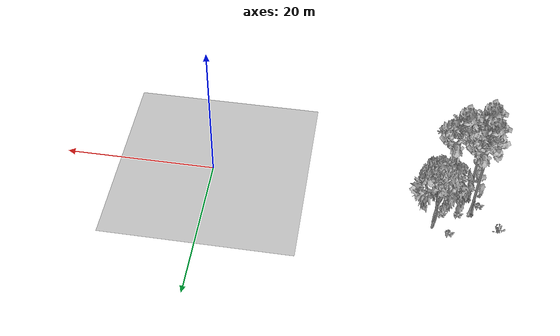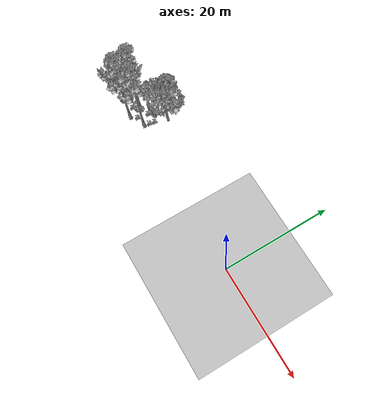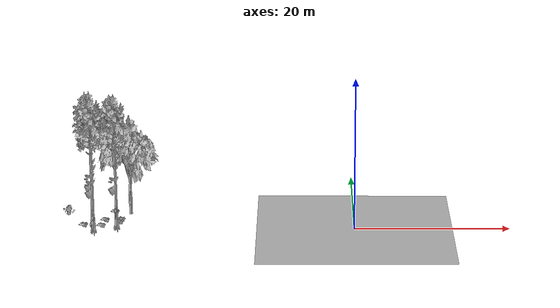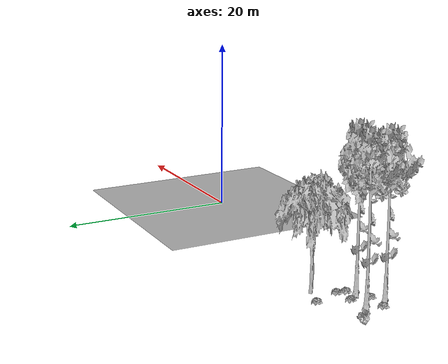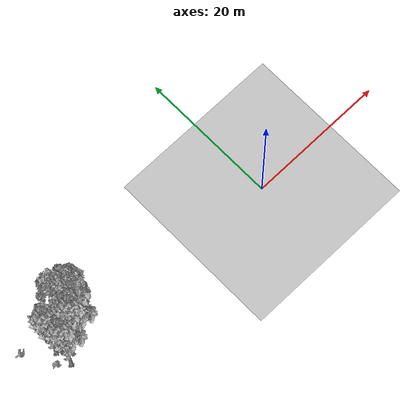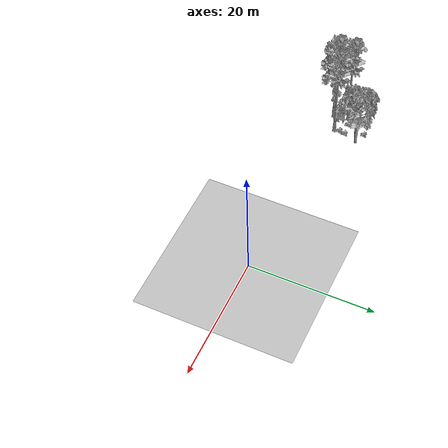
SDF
<sdf version="1.7">
 <world name="default">
  <model name="ground_plane">
   <static>1</static>
   <link name="link">
    <collision name="collision">
     <pose>-50 0 0 0 -0 0</pose>
     <geometry><plane><normal>0 0 1</normal><size>80 80</size></plane></geometry>
     <surface><contact><ode><min_depth>0.01</min_depth><max_vel>0</max_vel></ode></contact></surface>
    </collision>
    <visual name="grass">
     <cast_shadows>0</cast_shadows>
     <geometry>
      <mesh>
       <scale>0.46714285714285714 0.46714285714285714 0.1</scale>
       <uri>file://grass_plane/meshes/grass_plane.dae</uri>
      </mesh>
     </geometry>
    </visual>
   </link>
  </model>
  <model name="Tree 152">
   <static>1</static>
   <pose>-33.97894144782575 2.3663769199099605 0 1.57079 -0 0</pose>
   <link name="link">
    <collision name="collision">
     <geometry><mesh><scale>3.5 5 3.5</scale><uri>model://tree_9/meshes/tree_9.obj</uri></mesh></geometry>
    </collision>
    <visual name="visual">
     <geometry><mesh><scale>3.5 5 3.5</scale><uri>model://tree_9/meshes/tree_9.obj</uri></mesh></geometry>
    </visual>
   </link>
  </model>
  <model name="Tree 218">
   <static>1</static>
   <pose>-33.63779996593756 -0.05847577790642333 0 1.57079 -0 0</pose>
   <link name="link">
    <collision name="collision">
     <geometry><mesh><scale>3.5 5 3.5</scale><uri>model://tree_9/meshes/tree_9.obj</uri></mesh></geometry>
    </collision>
    <visual name="visual">
     <geometry><mesh><scale>3.5 5 3.5</scale><uri>model://tree_9/meshes/tree_9.obj</uri></mesh></geometry>
    </visual>
   </link>
  </model>
  <model name="Tree 449">
   <static>1</static>
   <pose>-29.314017843315774 5.477522644204569 0 1.57079 -0 0</pose>
   <link name="link">
    <collision name="collision">
     <geometry><mesh><scale>3.5 5 3.5</scale><uri>model://tree_2/meshes/tree_2.obj</uri></mesh></geometry>
    </collision>
    <visual name="visual">
     <geometry><mesh><scale>3.5 5 3.5</scale><uri>model://tree_2/meshes/tree_2.obj</uri></mesh></geometry>
    </visual>
   </link>
  </model>
  <model name="Tree 479">
   <static>1</static>
   <pose>-30.754872008099465 1.2554095736897892 0 1.57079 -0 0</pose>
   <link name="link">
    <collision name="collision">
     <geometry><mesh><scale>3.5 5 3.5</scale><uri>model://tree_9/meshes/tree_9.obj</uri></mesh></geometry>
    </collision>
    <visual name="visual">
     <geometry><mesh><scale>3.5 5 3.5</scale><uri>model://tree_9/meshes/tree_9.obj</uri></mesh></geometry>
    </visual>
   </link>
  </model>
  <model name="Bush 13">
   <static>1</static>
   <pose>-35.03905832718103 1.1381008981157166 0 1.57079 -0 0</pose>
   <link name="link">
    <collision name="collision">
     <geometry><mesh><scale>2 2 2</scale><uri>model://bush_2/meshes/bush_2.obj</uri></mesh></geometry>
     <surface><contact><collide_without_contact>false</collide_without_contact></contact></surface>
    </collision>
    <visual name="visual">
     <geometry><mesh><scale>2 2 2</scale><uri>model://bush_2/meshes/bush_2.obj</uri></mesh></geometry>
    </visual>
   </link>
  </model>
  <model name="Bush 79">
   <static>1</static>
   <pose>-30.349302017162387 3.200902240653811 0 1.57079 -0 0</pose>
   <link name="link">
    <collision name="collision">
     <geometry><mesh><scale>2 2 2</scale><uri>model://bush_2/meshes/bush_2.obj</uri></mesh></geometry>
     <surface><contact><collide_without_contact>false</collide_without_contact></contact></surface>
    </collision>
    <visual name="visual">
     <geometry><mesh><scale>2 2 2</scale><uri>model://bush_2/meshes/bush_2.obj</uri></mesh></geometry>
    </visual>
   </link>
  </model>
  <model name="Bush 147">
   <static>1</static>
   <pose>-31.3644319217258 6.140563698212418 0 1.57079 -0 0</pose>
   <link name="link">
    <collision name="collision">
     <geometry><mesh><scale>2 2 2</scale><uri>model://bush_2/meshes/bush_2.obj</uri></mesh></geometry>
     <surface><contact><collide_without_contact>false</collide_without_contact></contact></surface>
    </collision>
    <visual name="visual">
     <geometry><mesh><scale>2 2 2</scale><uri>model://bush_2/meshes/bush_2.obj</uri></mesh></geometry>
    </visual>
   </link>
  </model>
  <model name="Bush 427">
   <static>1</static>
   <pose>-30.521463881284376 2.2233640679769593 0 1.57079 -0 0</pose>
   <link name="link">
    <collision name="collision">
     <geometry><mesh><scale>2 2 2</scale><uri>model://bush_2/meshes/bush_2.obj</uri></mesh></geometry>
     <surface><contact><collide_without_contact>false</collide_without_contact></contact></surface>
    </collision>
    <visual name="visual">
     <geometry><mesh><scale>2 2 2</scale><uri>model://bush_2/meshes/bush_2.obj</uri></mesh></geometry>
    </visual>
   </link>
  </model>
  <model name="Bush 433">
   <static>1</static>
   <pose>-32.72569971230455 0.9214461154576128 0 1.57079 -0 0</pose>
   <link name="link">
    <collision name="collision">
     <geometry><mesh><scale>2 2 2</scale><uri>model://bush_2/meshes/bush_2.obj</uri></mesh></geometry>
     <surface><contact><collide_without_contact>false</collide_without_contact></contact></surface>
    </collision>
    <visual name="visual">
     <geometry><mesh><scale>2 2 2</scale><uri>model://bush_2/meshes/bush_2.obj</uri></mesh></geometry>
    </visual>
   </link>
  </model>
  <model name="Bush 553">
   <static>1</static>
   <pose>-32.39219680349898 2.973673659520827 0 1.57079 -0 0</pose>
   <link name="link">
    <collision name="collision">
     <geometry><mesh><scale>2 2 2</scale><uri>model://bush_2/meshes/bush_2.obj</uri></mesh></geometry>
     <surface><contact><collide_without_contact>false</collide_without_contact></contact></surface>
    </collision>
    <visual name="visual">
     <geometry><mesh><scale>2 2 2</scale><uri>model://bush_2/meshes/bush_2.obj</uri></mesh></geometry>
    </visual>
   </link>
  </model>
  <model name="Bush 627">
   <static>1</static>
   <pose>-37.382694823962474 5.027343958700463 0 1.57079 -0 0</pose>
   <link name="link">
    <collision name="collision">
     <geometry><mesh><scale>2 2 2</scale><uri>model://bush_4/meshes/bush_4.obj</uri></mesh></geometry>
     <surface><contact><collide_without_contact>false</collide_without_contact></contact></surface>
    </collision>
    <visual name="visual">
     <geometry><mesh><scale>2 2 2</scale><uri>model://bush_4/meshes/bush_4.obj</uri></mesh></geometry>
    </visual>
   </link>
  </model>
 </world>
</sdf>
